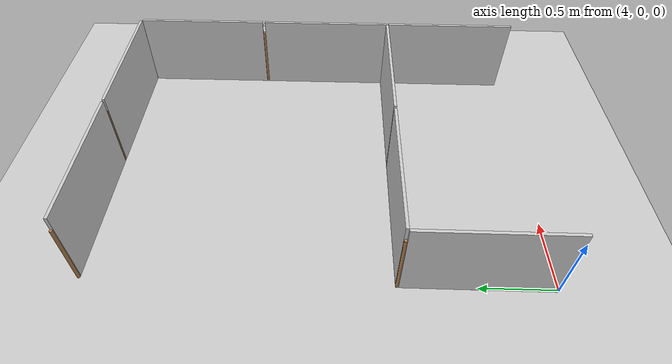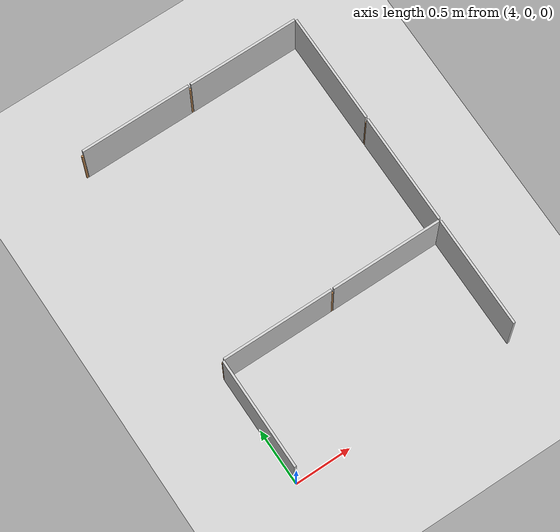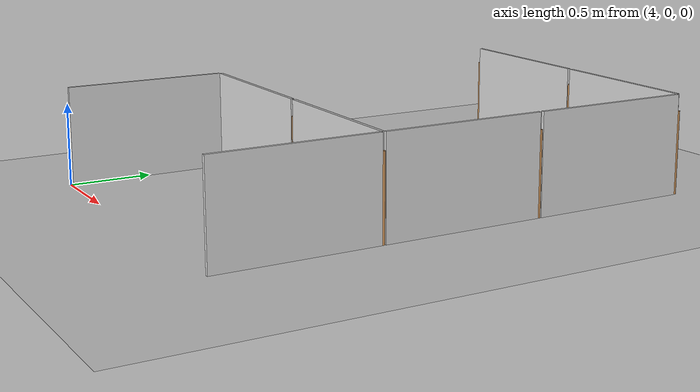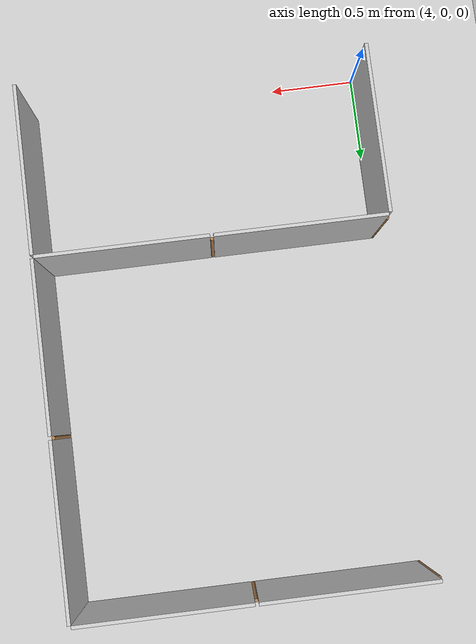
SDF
<sdf version="1.7">
 <world name="default">
  <model name="ground_plane">
   <static>true</static>
   <link name="link">
    <collision name="collision">
     <geometry><plane><normal>0 0 1</normal><size>1 1</size></plane></geometry>
    </collision>
    <visual name="visual">
     <geometry><plane><normal>0 0 1</normal><size>100 100</size></plane></geometry>
     <material>
      <ambient>0.8 0.8 0.8 1</ambient>
      <diffuse>0.8 0.8 0.8 1</diffuse>
      <specular>0.8 0.8 0.8 1</specular>
     </material>
    </visual>
    <inertial>
     <mass>1</mass>
     <inertia><ixx>1</ixx><ixy>0</ixy><ixz>0</ixz><iyy>1</iyy><iyz>0</iyz><izz>1</izz></inertia>
    </inertial>
   </link>
  </model>
  <model name="maze_1_6x5_clone_clone_5">
   <frame name="plywood_panel_0_0_b::__model__" attached_to="plywood_panel_0_0_b::main">
    <pose relative_to="__model__">0 0 0 0 -0 1.571</pose>
   </frame>
   <static>true</static>
   <link name="plywood_panel_0_0_b::main">
    <pose relative_to="plywood_panel_0_0_b::__model__">0 0 0 0 -0 0</pose>
    <collision name="collision">
     <pose>0 -0.5 0.3 -1.571 -0 -1.571</pose>
     <geometry><box><size>0.98 0.6 0.02</size></box></geometry>
    </collision>
    <visual name="visual">
     <pose>0.01 -0.01 0 3.14159 -1.57059 3.14159</pose>
     <geometry>
      <mesh>
       <scale>1 1 1</scale>
       <uri>/home/mayank/cognipilot/cranium/src/dream_world/models/plywood_panel/meshes/plywood.dae</uri>
      </mesh>
     </geometry>
    </visual>
   </link>
   <frame name="wooden_joint_0_0_b::__model__" attached_to="wooden_joint_0_0_b::link_0">
    <pose relative_to="__model__">0 0 0 0 -0 0</pose>
   </frame>
   <link name="wooden_joint_0_0_b::link_0">
    <pose relative_to="wooden_joint_0_0_b::__model__">0 0 0.25 0 -0 0</pose>
    <inertial>
     <mass>0.00215981</mass>
     <inertia>
      <ixx>0.00018028</ixx>
      <ixy>0</ixy>
      <ixz>0</ixz>
      <iyy>0.00018028</iyy>
      <iyz>0</iyz>
      <izz>5.8e-07</izz>
     </inertia>
    </inertial>
    <visual name="visual">
     <geometry><cylinder><radius>0.01</radius><length>0.5</length></cylinder></geometry>
     <material>
      <lighting>1</lighting>
      <script><uri>file://media/materials/scripts/gazebo.material</uri><name>Gazebo/Wood</name></script>
      <shader type="pixel"><normal_map>__default__</normal_map></shader>
      <ambient>0.3 0.3 0.3 1</ambient>
      <diffuse>0.7 0.7 0.7 1</diffuse>
      <specular>0.01 0.01 0.01 1</specular>
      <emissive>0 0 0 1</emissive>
     </material>
    </visual>
    <collision name="collision">
     <geometry><cylinder><radius>0.01</radius><length>0.5</length></cylinder></geometry>
     <surface>
      <friction>
       <ode><mu>1</mu><mu2>1</mu2><fdir1>0 0 0</fdir1><slip1>0</slip1><slip2>0</slip2></ode>
       <torsional>
        <coefficient>1</coefficient>
        <patch_radius>0</patch_radius>
        <surface_radius>0</surface_radius>
        <use_patch_radius>1</use_patch_radius>
        <ode><slip>0</slip></ode>
       </torsional>
      </friction>
      <bounce><restitution_coefficient>0</restitution_coefficient><threshold>1e+06</threshold></bounce>
      <contact>
       <collide_without_contact>0</collide_without_contact>
       <collide_without_contact_bitmask>1</collide_without_contact_bitmask>
       <collide_bitmask>1</collide_bitmask>
       <ode>
        <soft_cfm>0</soft_cfm>
        <soft_erp>0.2</soft_erp>
        <kp>1e+13</kp>
        <kd>1</kd>
        <max_vel>0.01</max_vel>
        <min_depth>0</min_depth>
       </ode>
       <bullet>
        <split_impulse>1</split_impulse>
        <split_impulse_penetration_threshold>-0.01</split_impulse_penetration_threshold>
        <soft_cfm>0</soft_cfm>
        <soft_erp>0.2</soft_erp>
        <kp>1e+13</kp>
        <kd>1</kd>
       </bullet>
      </contact>
     </surface>
    </collision>
   </link>
   <static>true</static>
   <pose>6 1 0 0 0 -1.5708</pose>
  </model>
  <model name="maze_1_6x5_clone_2_clone_clone_5_clone_0">
   <frame name="plywood_panel_0_0_b::__model__" attached_to="plywood_panel_0_0_b::main">
    <pose relative_to="__model__">0 0 0 0 -0 1.571</pose>
   </frame>
   <static>true</static>
   <link name="plywood_panel_0_0_b::main">
    <pose relative_to="plywood_panel_0_0_b::__model__">0 0 0 0 -0 0</pose>
    <collision name="collision">
     <pose>0 -0.5 0.3 -1.571 -0 -1.571</pose>
     <geometry><box><size>0.98 0.6 0.02</size></box></geometry>
    </collision>
    <visual name="visual">
     <pose>0.01 -0.01 0 3.14159 -1.57059 3.14159</pose>
     <geometry>
      <mesh>
       <scale>1 1 1</scale>
       <uri>/home/mayank/cognipilot/cranium/src/dream_world/models/plywood_panel/meshes/plywood.dae</uri>
      </mesh>
     </geometry>
    </visual>
   </link>
   <frame name="wooden_joint_0_0_b::__model__" attached_to="wooden_joint_0_0_b::link_0">
    <pose relative_to="__model__">0 0 0 0 -0 0</pose>
   </frame>
   <link name="wooden_joint_0_0_b::link_0">
    <pose relative_to="wooden_joint_0_0_b::__model__">0 0 0.25 0 -0 0</pose>
    <inertial>
     <mass>0.00215981</mass>
     <inertia>
      <ixx>0.00018028</ixx>
      <ixy>0</ixy>
      <ixz>0</ixz>
      <iyy>0.00018028</iyy>
      <iyz>0</iyz>
      <izz>5.8e-07</izz>
     </inertia>
    </inertial>
    <visual name="visual">
     <geometry><cylinder><radius>0.01</radius><length>0.5</length></cylinder></geometry>
     <material>
      <lighting>1</lighting>
      <script><uri>file://media/materials/scripts/gazebo.material</uri><name>Gazebo/Wood</name></script>
      <shader type="pixel"><normal_map>__default__</normal_map></shader>
      <ambient>0.3 0.3 0.3 1</ambient>
      <diffuse>0.7 0.7 0.7 1</diffuse>
      <specular>0.01 0.01 0.01 1</specular>
      <emissive>0 0 0 1</emissive>
     </material>
    </visual>
    <collision name="collision">
     <geometry><cylinder><radius>0.01</radius><length>0.5</length></cylinder></geometry>
     <surface>
      <friction>
       <ode><mu>1</mu><mu2>1</mu2><fdir1>0 0 0</fdir1><slip1>0</slip1><slip2>0</slip2></ode>
       <torsional>
        <coefficient>1</coefficient>
        <patch_radius>0</patch_radius>
        <surface_radius>0</surface_radius>
        <use_patch_radius>1</use_patch_radius>
        <ode><slip>0</slip></ode>
       </torsional>
      </friction>
      <bounce><restitution_coefficient>0</restitution_coefficient><threshold>1e+06</threshold></bounce>
      <contact>
       <collide_without_contact>0</collide_without_contact>
       <collide_without_contact_bitmask>1</collide_without_contact_bitmask>
       <collide_bitmask>1</collide_bitmask>
       <ode>
        <soft_cfm>0</soft_cfm>
        <soft_erp>0.2</soft_erp>
        <kp>1e+13</kp>
        <kd>1</kd>
        <max_vel>0.01</max_vel>
        <min_depth>0</min_depth>
       </ode>
       <bullet>
        <split_impulse>1</split_impulse>
        <split_impulse_penetration_threshold>-0.01</split_impulse_penetration_threshold>
        <soft_cfm>0</soft_cfm>
        <soft_erp>0.2</soft_erp>
        <kp>1e+13</kp>
        <kd>1</kd>
       </bullet>
      </contact>
     </surface>
    </collision>
   </link>
   <static>true</static>
   <pose>4 1 0 0 0 -4e-06</pose>
  </model>
  <model name="maze_1_6x5_clone_2_clone_clone_5_clone_1">
   <frame name="plywood_panel_0_0_b::__model__" attached_to="plywood_panel_0_0_b::main">
    <pose relative_to="__model__">0 0 0 0 -0 1.571</pose>
   </frame>
   <static>true</static>
   <link name="plywood_panel_0_0_b::main">
    <pose relative_to="plywood_panel_0_0_b::__model__">0 0 0 0 -0 0</pose>
    <collision name="collision">
     <pose>0 -0.5 0.3 -1.571 -0 -1.571</pose>
     <geometry><box><size>0.98 0.6 0.02</size></box></geometry>
    </collision>
    <visual name="visual">
     <pose>0.01 -0.01 0 3.14159 -1.57059 3.14159</pose>
     <geometry>
      <mesh>
       <scale>1 1 1</scale>
       <uri>/home/mayank/cognipilot/cranium/src/dream_world/models/plywood_panel/meshes/plywood.dae</uri>
      </mesh>
     </geometry>
    </visual>
   </link>
   <frame name="wooden_joint_0_0_b::__model__" attached_to="wooden_joint_0_0_b::link_0">
    <pose relative_to="__model__">0 0 0 0 -0 0</pose>
   </frame>
   <link name="wooden_joint_0_0_b::link_0">
    <pose relative_to="wooden_joint_0_0_b::__model__">0 0 0.25 0 -0 0</pose>
    <inertial>
     <mass>0.00215981</mass>
     <inertia>
      <ixx>0.00018028</ixx>
      <ixy>0</ixy>
      <ixz>0</ixz>
      <iyy>0.00018028</iyy>
      <iyz>0</iyz>
      <izz>5.8e-07</izz>
     </inertia>
    </inertial>
    <visual name="visual">
     <geometry><cylinder><radius>0.01</radius><length>0.5</length></cylinder></geometry>
     <material>
      <lighting>1</lighting>
      <script><uri>file://media/materials/scripts/gazebo.material</uri><name>Gazebo/Wood</name></script>
      <shader type="pixel"><normal_map>__default__</normal_map></shader>
      <ambient>0.3 0.3 0.3 1</ambient>
      <diffuse>0.7 0.7 0.7 1</diffuse>
      <specular>0.01 0.01 0.01 1</specular>
      <emissive>0 0 0 1</emissive>
     </material>
    </visual>
    <collision name="collision">
     <geometry><cylinder><radius>0.01</radius><length>0.5</length></cylinder></geometry>
     <surface>
      <friction>
       <ode><mu>1</mu><mu2>1</mu2><fdir1>0 0 0</fdir1><slip1>0</slip1><slip2>0</slip2></ode>
       <torsional>
        <coefficient>1</coefficient>
        <patch_radius>0</patch_radius>
        <surface_radius>0</surface_radius>
        <use_patch_radius>1</use_patch_radius>
        <ode><slip>0</slip></ode>
       </torsional>
      </friction>
      <bounce><restitution_coefficient>0</restitution_coefficient><threshold>1e+06</threshold></bounce>
      <contact>
       <collide_without_contact>0</collide_without_contact>
       <collide_without_contact_bitmask>1</collide_without_contact_bitmask>
       <collide_bitmask>1</collide_bitmask>
       <ode>
        <soft_cfm>0</soft_cfm>
        <soft_erp>0.2</soft_erp>
        <kp>1e+13</kp>
        <kd>1</kd>
        <max_vel>0.01</max_vel>
        <min_depth>0</min_depth>
       </ode>
       <bullet>
        <split_impulse>1</split_impulse>
        <split_impulse_penetration_threshold>-0.01</split_impulse_penetration_threshold>
        <soft_cfm>0</soft_cfm>
        <soft_erp>0.2</soft_erp>
        <kp>1e+13</kp>
        <kd>1</kd>
       </bullet>
      </contact>
     </surface>
    </collision>
   </link>
   <static>true</static>
   <pose>5 1 0 0 0 -4e-06</pose>
  </model>
  <model name="maze_1_6x5_clone_clone_clone">
   <frame name="plywood_panel_0_0_b::__model__" attached_to="plywood_panel_0_0_b::main">
    <pose relative_to="__model__">0 0 0 0 -0 1.571</pose>
   </frame>
   <static>true</static>
   <link name="plywood_panel_0_0_b::main">
    <pose relative_to="plywood_panel_0_0_b::__model__">0 0 0 0 -0 0</pose>
    <collision name="collision">
     <pose>0 -0.5 0.3 -1.571 -0 -1.571</pose>
     <geometry><box><size>0.98 0.6 0.02</size></box></geometry>
    </collision>
    <visual name="visual">
     <pose>0.01 -0.01 0 3.14159 -1.57059 3.14159</pose>
     <geometry>
      <mesh>
       <scale>1 1 1</scale>
       <uri>/home/mayank/cognipilot/cranium/src/dream_world/models/plywood_panel/meshes/plywood.dae</uri>
      </mesh>
     </geometry>
    </visual>
   </link>
   <frame name="wooden_joint_0_0_b::__model__" attached_to="wooden_joint_0_0_b::link_0">
    <pose relative_to="__model__">0 0 0 0 -0 0</pose>
   </frame>
   <link name="wooden_joint_0_0_b::link_0">
    <pose relative_to="wooden_joint_0_0_b::__model__">0 0 0.25 0 -0 0</pose>
    <inertial>
     <mass>0.00215981</mass>
     <inertia>
      <ixx>0.00018028</ixx>
      <ixy>0</ixy>
      <ixz>0</ixz>
      <iyy>0.00018028</iyy>
      <iyz>0</iyz>
      <izz>5.8e-07</izz>
     </inertia>
    </inertial>
    <visual name="visual">
     <geometry><cylinder><radius>0.01</radius><length>0.5</length></cylinder></geometry>
     <material>
      <lighting>1</lighting>
      <script><uri>file://media/materials/scripts/gazebo.material</uri><name>Gazebo/Wood</name></script>
      <shader type="pixel"><normal_map>__default__</normal_map></shader>
      <ambient>0.3 0.3 0.3 1</ambient>
      <diffuse>0.7 0.7 0.7 1</diffuse>
      <specular>0.01 0.01 0.01 1</specular>
      <emissive>0 0 0 1</emissive>
     </material>
    </visual>
    <collision name="collision">
     <geometry><cylinder><radius>0.01</radius><length>0.5</length></cylinder></geometry>
     <surface>
      <friction>
       <ode><mu>1</mu><mu2>1</mu2><fdir1>0 0 0</fdir1><slip1>0</slip1><slip2>0</slip2></ode>
       <torsional>
        <coefficient>1</coefficient>
        <patch_radius>0</patch_radius>
        <surface_radius>0</surface_radius>
        <use_patch_radius>1</use_patch_radius>
        <ode><slip>0</slip></ode>
       </torsional>
      </friction>
      <bounce><restitution_coefficient>0</restitution_coefficient><threshold>1e+06</threshold></bounce>
      <contact>
       <collide_without_contact>0</collide_without_contact>
       <collide_without_contact_bitmask>1</collide_without_contact_bitmask>
       <collide_bitmask>1</collide_bitmask>
       <ode>
        <soft_cfm>0</soft_cfm>
        <soft_erp>0.2</soft_erp>
        <kp>1e+13</kp>
        <kd>1</kd>
        <max_vel>0.01</max_vel>
        <min_depth>0</min_depth>
       </ode>
       <bullet>
        <split_impulse>1</split_impulse>
        <split_impulse_penetration_threshold>-0.01</split_impulse_penetration_threshold>
        <soft_cfm>0</soft_cfm>
        <soft_erp>0.2</soft_erp>
        <kp>1e+13</kp>
        <kd>1</kd>
       </bullet>
      </contact>
     </surface>
    </collision>
   </link>
   <static>true</static>
   <pose>4 1 0 0 0 -1.5708</pose>
  </model>
  <model name="maze_1_6x5_clone_clone_clone_1">
   <frame name="plywood_panel_0_0_b::__model__" attached_to="plywood_panel_0_0_b::main">
    <pose relative_to="__model__">0 0 0 0 -0 1.571</pose>
   </frame>
   <static>true</static>
   <link name="plywood_panel_0_0_b::main">
    <pose relative_to="plywood_panel_0_0_b::__model__">0 0 0 0 -0 0</pose>
    <collision name="collision">
     <pose>0 -0.5 0.3 -1.571 -0 -1.571</pose>
     <geometry><box><size>0.98 0.6 0.02</size></box></geometry>
    </collision>
    <visual name="visual">
     <pose>0.01 -0.01 0 3.14159 -1.57059 3.14159</pose>
     <geometry>
      <mesh>
       <scale>1 1 1</scale>
       <uri>/home/mayank/cognipilot/cranium/src/dream_world/models/plywood_panel/meshes/plywood.dae</uri>
      </mesh>
     </geometry>
    </visual>
   </link>
   <frame name="wooden_joint_0_0_b::__model__" attached_to="wooden_joint_0_0_b::link_0">
    <pose relative_to="__model__">0 0 0 0 -0 0</pose>
   </frame>
   <link name="wooden_joint_0_0_b::link_0">
    <pose relative_to="wooden_joint_0_0_b::__model__">0 0 0.25 0 -0 0</pose>
    <inertial>
     <mass>0.00215981</mass>
     <inertia>
      <ixx>0.00018028</ixx>
      <ixy>0</ixy>
      <ixz>0</ixz>
      <iyy>0.00018028</iyy>
      <iyz>0</iyz>
      <izz>5.8e-07</izz>
     </inertia>
    </inertial>
    <visual name="visual">
     <geometry><cylinder><radius>0.01</radius><length>0.5</length></cylinder></geometry>
     <material>
      <lighting>1</lighting>
      <script><uri>file://media/materials/scripts/gazebo.material</uri><name>Gazebo/Wood</name></script>
      <shader type="pixel"><normal_map>__default__</normal_map></shader>
      <ambient>0.3 0.3 0.3 1</ambient>
      <diffuse>0.7 0.7 0.7 1</diffuse>
      <specular>0.01 0.01 0.01 1</specular>
      <emissive>0 0 0 1</emissive>
     </material>
    </visual>
    <collision name="collision">
     <geometry><cylinder><radius>0.01</radius><length>0.5</length></cylinder></geometry>
     <surface>
      <friction>
       <ode><mu>1</mu><mu2>1</mu2><fdir1>0 0 0</fdir1><slip1>0</slip1><slip2>0</slip2></ode>
       <torsional>
        <coefficient>1</coefficient>
        <patch_radius>0</patch_radius>
        <surface_radius>0</surface_radius>
        <use_patch_radius>1</use_patch_radius>
        <ode><slip>0</slip></ode>
       </torsional>
      </friction>
      <bounce><restitution_coefficient>0</restitution_coefficient><threshold>1e+06</threshold></bounce>
      <contact>
       <collide_without_contact>0</collide_without_contact>
       <collide_without_contact_bitmask>1</collide_without_contact_bitmask>
       <collide_bitmask>1</collide_bitmask>
       <ode>
        <soft_cfm>0</soft_cfm>
        <soft_erp>0.2</soft_erp>
        <kp>1e+13</kp>
        <kd>1</kd>
        <max_vel>0.01</max_vel>
        <min_depth>0</min_depth>
       </ode>
       <bullet>
        <split_impulse>1</split_impulse>
        <split_impulse_penetration_threshold>-0.01</split_impulse_penetration_threshold>
        <soft_cfm>0</soft_cfm>
        <soft_erp>0.2</soft_erp>
        <kp>1e+13</kp>
        <kd>1</kd>
       </bullet>
      </contact>
     </surface>
    </collision>
   </link>
   <static>true</static>
   <pose>6 2 0 0 0 -1.5708</pose>
  </model>
  <model name="maze_1_6x5_clone_clone_clone_2">
   <frame name="plywood_panel_0_0_b::__model__" attached_to="plywood_panel_0_0_b::main">
    <pose relative_to="__model__">0 0 0 0 -0 1.571</pose>
   </frame>
   <static>true</static>
   <link name="plywood_panel_0_0_b::main">
    <pose relative_to="plywood_panel_0_0_b::__model__">0 0 0 0 -0 0</pose>
    <collision name="collision">
     <pose>0 -0.5 0.3 -1.571 -0 -1.571</pose>
     <geometry><box><size>0.98 0.6 0.02</size></box></geometry>
    </collision>
    <visual name="visual">
     <pose>0.01 -0.01 0 3.14159 -1.57059 3.14159</pose>
     <geometry>
      <mesh>
       <scale>1 1 1</scale>
       <uri>/home/mayank/cognipilot/cranium/src/dream_world/models/plywood_panel/meshes/plywood.dae</uri>
      </mesh>
     </geometry>
    </visual>
   </link>
   <frame name="wooden_joint_0_0_b::__model__" attached_to="wooden_joint_0_0_b::link_0">
    <pose relative_to="__model__">0 0 0 0 -0 0</pose>
   </frame>
   <link name="wooden_joint_0_0_b::link_0">
    <pose relative_to="wooden_joint_0_0_b::__model__">0 0 0.25 0 -0 0</pose>
    <inertial>
     <mass>0.00215981</mass>
     <inertia>
      <ixx>0.00018028</ixx>
      <ixy>0</ixy>
      <ixz>0</ixz>
      <iyy>0.00018028</iyy>
      <iyz>0</iyz>
      <izz>5.8e-07</izz>
     </inertia>
    </inertial>
    <visual name="visual">
     <geometry><cylinder><radius>0.01</radius><length>0.5</length></cylinder></geometry>
     <material>
      <lighting>1</lighting>
      <script><uri>file://media/materials/scripts/gazebo.material</uri><name>Gazebo/Wood</name></script>
      <shader type="pixel"><normal_map>__default__</normal_map></shader>
      <ambient>0.3 0.3 0.3 1</ambient>
      <diffuse>0.7 0.7 0.7 1</diffuse>
      <specular>0.01 0.01 0.01 1</specular>
      <emissive>0 0 0 1</emissive>
     </material>
    </visual>
    <collision name="collision">
     <geometry><cylinder><radius>0.01</radius><length>0.5</length></cylinder></geometry>
     <surface>
      <friction>
       <ode><mu>1</mu><mu2>1</mu2><fdir1>0 0 0</fdir1><slip1>0</slip1><slip2>0</slip2></ode>
       <torsional>
        <coefficient>1</coefficient>
        <patch_radius>0</patch_radius>
        <surface_radius>0</surface_radius>
        <use_patch_radius>1</use_patch_radius>
        <ode><slip>0</slip></ode>
       </torsional>
      </friction>
      <bounce><restitution_coefficient>0</restitution_coefficient><threshold>1e+06</threshold></bounce>
      <contact>
       <collide_without_contact>0</collide_without_contact>
       <collide_without_contact_bitmask>1</collide_without_contact_bitmask>
       <collide_bitmask>1</collide_bitmask>
       <ode>
        <soft_cfm>0</soft_cfm>
        <soft_erp>0.2</soft_erp>
        <kp>1e+13</kp>
        <kd>1</kd>
        <max_vel>0.01</max_vel>
        <min_depth>0</min_depth>
       </ode>
       <bullet>
        <split_impulse>1</split_impulse>
        <split_impulse_penetration_threshold>-0.01</split_impulse_penetration_threshold>
        <soft_cfm>0</soft_cfm>
        <soft_erp>0.2</soft_erp>
        <kp>1e+13</kp>
        <kd>1</kd>
       </bullet>
      </contact>
     </surface>
    </collision>
   </link>
   <static>true</static>
   <pose>6 3 0 0 0 -1.5708</pose>
  </model>
  <model name="maze_1_6x5_clone_2_clone_clone_5_clone_0_clone_1">
   <frame name="plywood_panel_0_0_b::__model__" attached_to="plywood_panel_0_0_b::main">
    <pose relative_to="__model__">0 0 0 0 -0 1.571</pose>
   </frame>
   <static>true</static>
   <link name="plywood_panel_0_0_b::main">
    <pose relative_to="plywood_panel_0_0_b::__model__">0 0 0 0 -0 0</pose>
    <collision name="collision">
     <pose>0 -0.5 0.3 -1.571 -0 -1.571</pose>
     <geometry><box><size>0.98 0.6 0.02</size></box></geometry>
    </collision>
    <visual name="visual">
     <pose>0.01 -0.01 0 3.14159 -1.57059 3.14159</pose>
     <geometry>
      <mesh>
       <scale>1 1 1</scale>
       <uri>/home/mayank/cognipilot/cranium/src/dream_world/models/plywood_panel/meshes/plywood.dae</uri>
      </mesh>
     </geometry>
    </visual>
   </link>
   <frame name="wooden_joint_0_0_b::__model__" attached_to="wooden_joint_0_0_b::link_0">
    <pose relative_to="__model__">0 0 0 0 -0 0</pose>
   </frame>
   <link name="wooden_joint_0_0_b::link_0">
    <pose relative_to="wooden_joint_0_0_b::__model__">0 0 0.25 0 -0 0</pose>
    <inertial>
     <mass>0.00215981</mass>
     <inertia>
      <ixx>0.00018028</ixx>
      <ixy>0</ixy>
      <ixz>0</ixz>
      <iyy>0.00018028</iyy>
      <iyz>0</iyz>
      <izz>5.8e-07</izz>
     </inertia>
    </inertial>
    <visual name="visual">
     <geometry><cylinder><radius>0.01</radius><length>0.5</length></cylinder></geometry>
     <material>
      <lighting>1</lighting>
      <script><uri>file://media/materials/scripts/gazebo.material</uri><name>Gazebo/Wood</name></script>
      <shader type="pixel"><normal_map>__default__</normal_map></shader>
      <ambient>0.3 0.3 0.3 1</ambient>
      <diffuse>0.7 0.7 0.7 1</diffuse>
      <specular>0.01 0.01 0.01 1</specular>
      <emissive>0 0 0 1</emissive>
     </material>
    </visual>
    <collision name="collision">
     <geometry><cylinder><radius>0.01</radius><length>0.5</length></cylinder></geometry>
     <surface>
      <friction>
       <ode><mu>1</mu><mu2>1</mu2><fdir1>0 0 0</fdir1><slip1>0</slip1><slip2>0</slip2></ode>
       <torsional>
        <coefficient>1</coefficient>
        <patch_radius>0</patch_radius>
        <surface_radius>0</surface_radius>
        <use_patch_radius>1</use_patch_radius>
        <ode><slip>0</slip></ode>
       </torsional>
      </friction>
      <bounce><restitution_coefficient>0</restitution_coefficient><threshold>1e+06</threshold></bounce>
      <contact>
       <collide_without_contact>0</collide_without_contact>
       <collide_without_contact_bitmask>1</collide_without_contact_bitmask>
       <collide_bitmask>1</collide_bitmask>
       <ode>
        <soft_cfm>0</soft_cfm>
        <soft_erp>0.2</soft_erp>
        <kp>1e+13</kp>
        <kd>1</kd>
        <max_vel>0.01</max_vel>
        <min_depth>0</min_depth>
       </ode>
       <bullet>
        <split_impulse>1</split_impulse>
        <split_impulse_penetration_threshold>-0.01</split_impulse_penetration_threshold>
        <soft_cfm>0</soft_cfm>
        <soft_erp>0.2</soft_erp>
        <kp>1e+13</kp>
        <kd>1</kd>
       </bullet>
      </contact>
     </surface>
    </collision>
   </link>
   <static>true</static>
   <pose>4 3 0 0 0 -4e-06</pose>
  </model>
  <model name="maze_1_6x5_clone_2_clone_clone_5_clone_0_clone_2">
   <frame name="plywood_panel_0_0_b::__model__" attached_to="plywood_panel_0_0_b::main">
    <pose relative_to="__model__">0 0 0 0 -0 1.571</pose>
   </frame>
   <static>true</static>
   <link name="plywood_panel_0_0_b::main">
    <pose relative_to="plywood_panel_0_0_b::__model__">0 0 0 0 -0 0</pose>
    <collision name="collision">
     <pose>0 -0.5 0.3 -1.571 -0 -1.571</pose>
     <geometry><box><size>0.98 0.6 0.02</size></box></geometry>
    </collision>
    <visual name="visual">
     <pose>0.01 -0.01 0 3.14159 -1.57059 3.14159</pose>
     <geometry>
      <mesh>
       <scale>1 1 1</scale>
       <uri>/home/mayank/cognipilot/cranium/src/dream_world/models/plywood_panel/meshes/plywood.dae</uri>
      </mesh>
     </geometry>
    </visual>
   </link>
   <frame name="wooden_joint_0_0_b::__model__" attached_to="wooden_joint_0_0_b::link_0">
    <pose relative_to="__model__">0 0 0 0 -0 0</pose>
   </frame>
   <link name="wooden_joint_0_0_b::link_0">
    <pose relative_to="wooden_joint_0_0_b::__model__">0 0 0.25 0 -0 0</pose>
    <inertial>
     <mass>0.00215981</mass>
     <inertia>
      <ixx>0.00018028</ixx>
      <ixy>0</ixy>
      <ixz>0</ixz>
      <iyy>0.00018028</iyy>
      <iyz>0</iyz>
      <izz>5.8e-07</izz>
     </inertia>
    </inertial>
    <visual name="visual">
     <geometry><cylinder><radius>0.01</radius><length>0.5</length></cylinder></geometry>
     <material>
      <lighting>1</lighting>
      <script><uri>file://media/materials/scripts/gazebo.material</uri><name>Gazebo/Wood</name></script>
      <shader type="pixel"><normal_map>__default__</normal_map></shader>
      <ambient>0.3 0.3 0.3 1</ambient>
      <diffuse>0.7 0.7 0.7 1</diffuse>
      <specular>0.01 0.01 0.01 1</specular>
      <emissive>0 0 0 1</emissive>
     </material>
    </visual>
    <collision name="collision">
     <geometry><cylinder><radius>0.01</radius><length>0.5</length></cylinder></geometry>
     <surface>
      <friction>
       <ode><mu>1</mu><mu2>1</mu2><fdir1>0 0 0</fdir1><slip1>0</slip1><slip2>0</slip2></ode>
       <torsional>
        <coefficient>1</coefficient>
        <patch_radius>0</patch_radius>
        <surface_radius>0</surface_radius>
        <use_patch_radius>1</use_patch_radius>
        <ode><slip>0</slip></ode>
       </torsional>
      </friction>
      <bounce><restitution_coefficient>0</restitution_coefficient><threshold>1e+06</threshold></bounce>
      <contact>
       <collide_without_contact>0</collide_without_contact>
       <collide_without_contact_bitmask>1</collide_without_contact_bitmask>
       <collide_bitmask>1</collide_bitmask>
       <ode>
        <soft_cfm>0</soft_cfm>
        <soft_erp>0.2</soft_erp>
        <kp>1e+13</kp>
        <kd>1</kd>
        <max_vel>0.01</max_vel>
        <min_depth>0</min_depth>
       </ode>
       <bullet>
        <split_impulse>1</split_impulse>
        <split_impulse_penetration_threshold>-0.01</split_impulse_penetration_threshold>
        <soft_cfm>0</soft_cfm>
        <soft_erp>0.2</soft_erp>
        <kp>1e+13</kp>
        <kd>1</kd>
       </bullet>
      </contact>
     </surface>
    </collision>
   </link>
   <static>true</static>
   <pose>5 3 0 0 0 -4e-06</pose>
  </model>
 </world>
</sdf>
